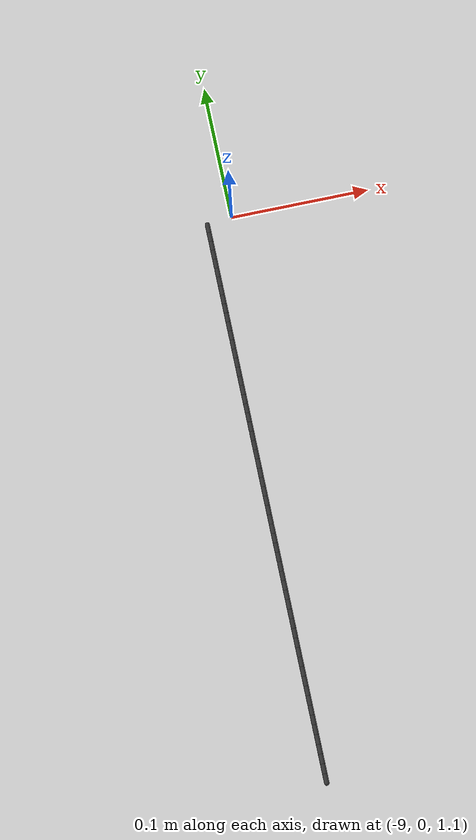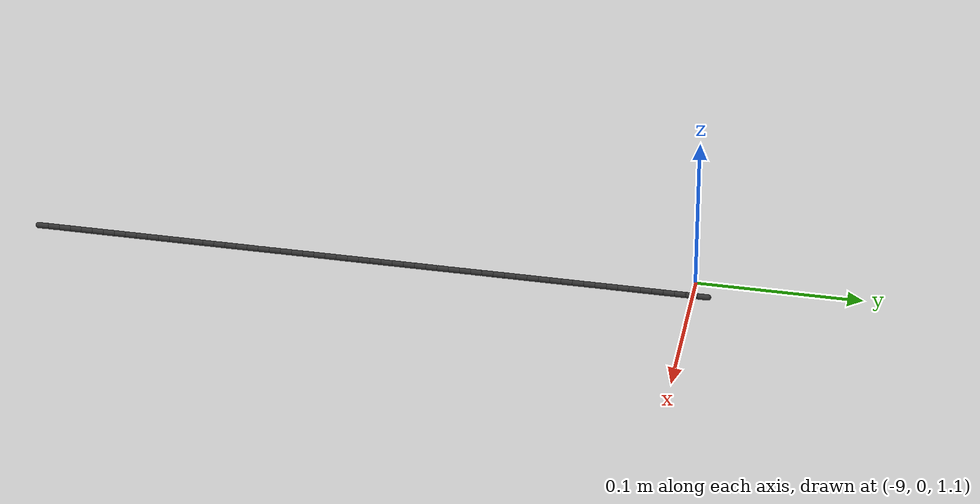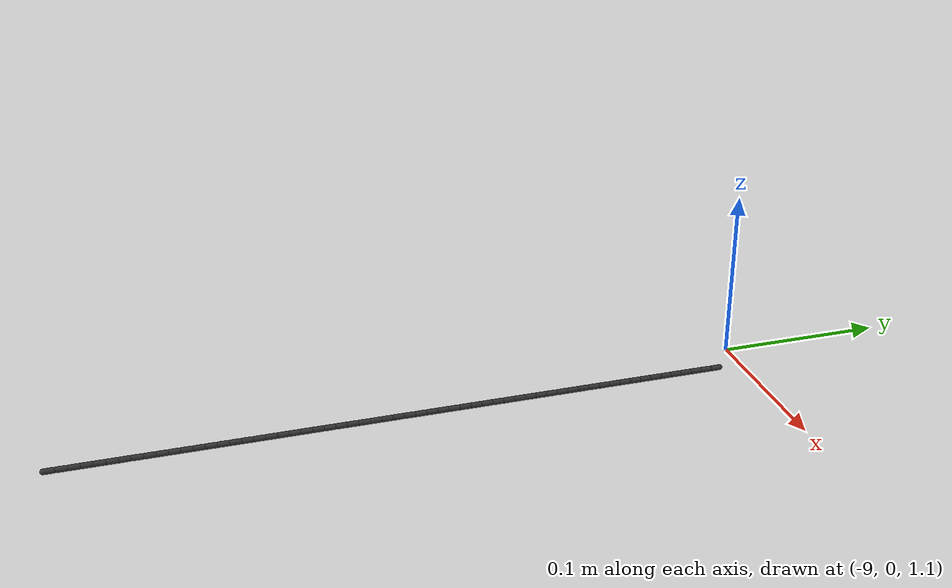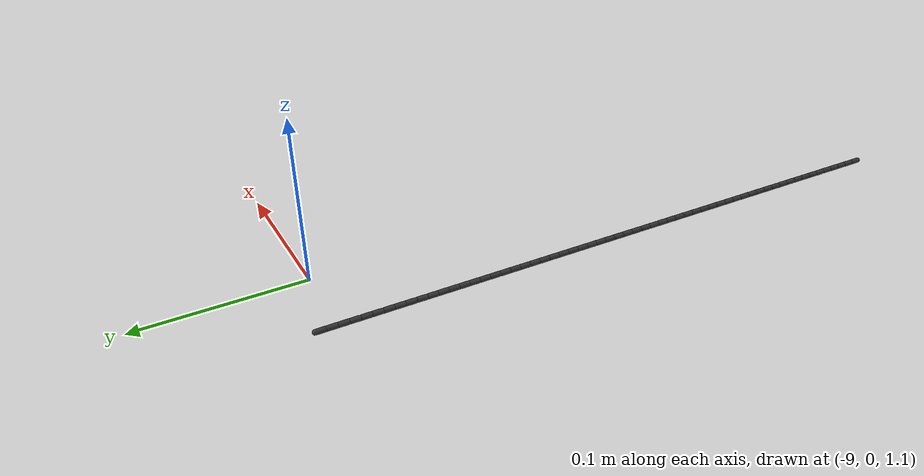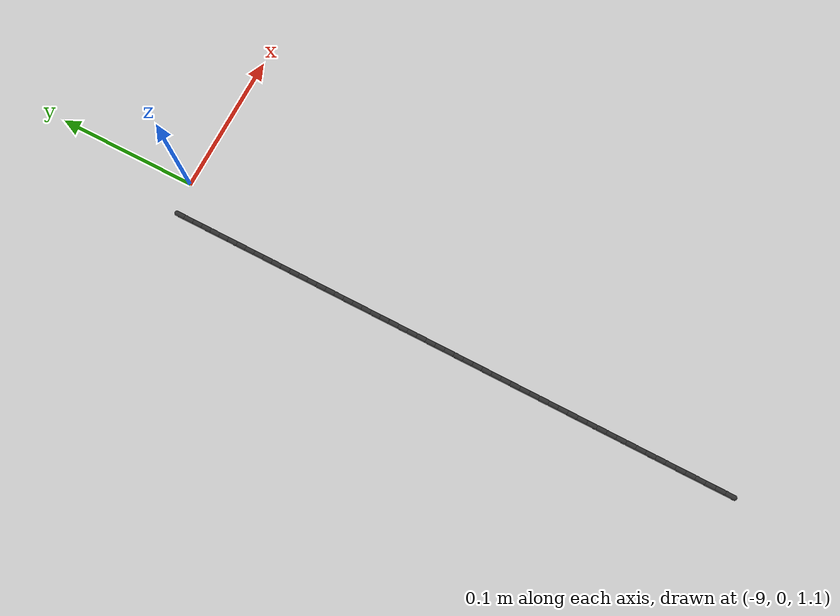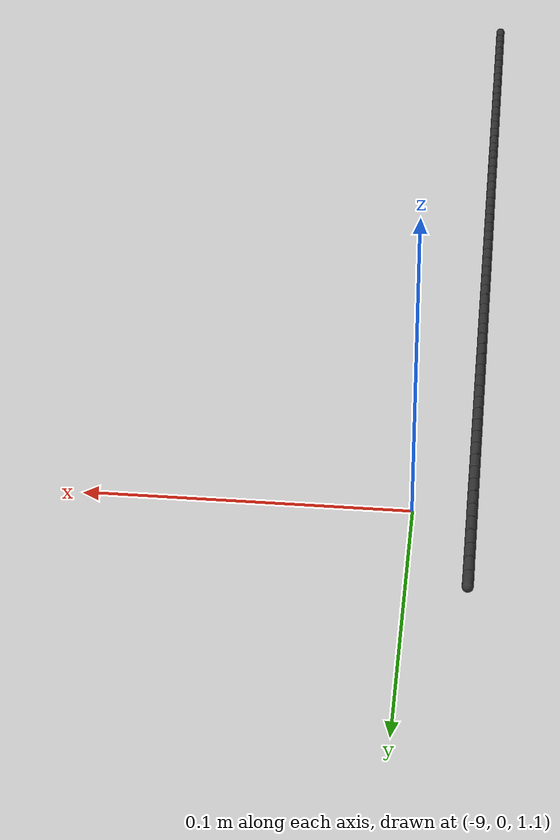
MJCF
<mujoco model="MuJoCo Model">
    <compiler angle="degree" />
	<option gravity="0 0 0"/>
    <size njmax="500" nconmax="100" />
    <default class="main">
        <default class="catheter">
            <motor ctrllimited="true"  forcelimited="true" ctrlrange="-1 1" forcerange="-0.005 0.005" />
			<joint pos="-0.00345 0 0" group="3" limited="true" stiffness="1e-05" range="-20 20" armature="0.1" damping="0.005" />
			<geom size="0.0018 0.003" quat="0.707107 0 0.707107 0" type="capsule" group="1" rgba="0.2 0.2 0.2 1" />
        </default>
        <default class="guidewire">
            <motor ctrllimited="true"  forcelimited="true" ctrlrange="-1 1" forcerange="-0.005 0.005" />
			<joint pos="-0.00345 0 0" group="3" limited="true" stiffness="1e-05" range="-15 15" armature="0.1" damping="0.005" />
			<geom size="0.0018 0.003" quat="0.707107 0 0.707107 0" type="capsule" group="1" rgba="0.2 0.2 0.2 1" />
        </default>
    </default>
    <worldbody>
        <body name="B0" pos="-9.0176103 -0.40447 1.07725" quat="0.707107 0 0 0.707107">
            <inertial pos="0 0 0" quat="0.707107 0 0.707107 0" mass="7.93943e-05" diaginertia="4.66839e-10 4.66839e-10 1.28619e-10" />
            <joint name="slider_joint" pos="0 0 0" axis="1 0 0" type="slide" limited="true" range="0 2" />
            <geom name="G0" class="catheter" />
            <body name="B1" pos="0.0069 0 0">
                <inertial pos="0 0 0" quat="0.707107 0 0.707107 0" mass="7.93943e-05" diaginertia="4.66839e-10 4.66839e-10 1.28619e-10" />
                <joint name="J0_1" axis="0 1 0" class="guidewire" />
                <joint name="J1_1" axis="0 0 1" class="guidewire" />
                <geom name="G1" class="catheter" />
                <body name="B2" pos="0.0069 0 0">
                    <inertial pos="0 0 0" quat="0.707107 0 0.707107 0" mass="7.93943e-05" diaginertia="4.66839e-10 4.66839e-10 1.28619e-10" />
                    <joint name="J0_2" axis="0 1 0" class="guidewire" />
                    <joint name="J1_2" axis="0 0 1" class="guidewire" />
                    <geom name="G2" class="catheter" />
                    <body name="B3" pos="0.0069 0 0">
                        <inertial pos="0 0 0" quat="0.707107 0 0.707107 0" mass="7.93943e-05" diaginertia="4.66839e-10 4.66839e-10 1.28619e-10" />
                        <joint name="J0_3" axis="0 1 0" class="guidewire" />
                        <joint name="J1_3" axis="0 0 1" class="guidewire" />
                        <geom name="G3" class="catheter" />
                        <body name="B4" pos="0.0069 0 0">
                            <inertial pos="0 0 0" quat="0.707107 0 0.707107 0" mass="7.93943e-05" diaginertia="4.66839e-10 4.66839e-10 1.28619e-10" />
                            <joint name="J0_4" axis="0 1 0" class="guidewire" />
                            <joint name="J1_4" axis="0 0 1" class="guidewire" />
                            <geom name="G4" class="catheter" />
                            <body name="B5" pos="0.0069 0 0">
                                <inertial pos="0 0 0" quat="0.707107 0 0.707107 0" mass="7.93943e-05" diaginertia="4.66839e-10 4.66839e-10 1.28619e-10" />
                                <joint name="J0_5" axis="0 1 0" class="guidewire" />
                                <joint name="J1_5" axis="0 0 1" class="guidewire" />
                                <geom name="G5" class="catheter" />
                                <body name="B6" pos="0.0069 0 0">
                                    <inertial pos="0 0 0" quat="0.707107 0 0.707107 0" mass="7.93943e-05" diaginertia="4.66839e-10 4.66839e-10 1.28619e-10" />
                                    <joint name="J0_6" axis="0 1 0" class="guidewire" />
                                    <joint name="J1_6" axis="0 0 1" class="guidewire" />
                                    <geom name="G6" class="catheter" />
                                    <body name="B7" pos="0.0069 0 0">
                                        <inertial pos="0 0 0" quat="0.707107 0 0.707107 0" mass="7.93943e-05" diaginertia="4.66839e-10 4.66839e-10 1.28619e-10" />
                                        <joint name="J0_7" axis="0 1 0" class="guidewire" />
                                        <joint name="J1_7" axis="0 0 1" class="guidewire" />
                                        <geom name="G7" class="catheter" />
                                        <body name="B8" pos="0.0069 0 0">
                                            <inertial pos="0 0 0" quat="0.707107 0 0.707107 0" mass="7.93943e-05" diaginertia="4.66839e-10 4.66839e-10 1.28619e-10" />
                                            <joint name="J0_8" axis="0 1 0" class="guidewire" />
                                            <joint name="J1_8" axis="0 0 1" class="guidewire" />
                                            <geom name="G8" class="catheter" />
                                            <body name="B9" pos="0.0069 0 0">
                                                <inertial pos="0 0 0" quat="0.707107 0 0.707107 0" mass="7.93943e-05" diaginertia="4.66839e-10 4.66839e-10 1.28619e-10" />
                                                <joint name="J0_9" axis="0 1 0" class="guidewire" />
                                                <joint name="J1_9" axis="0 0 1" class="guidewire" />
                                                <geom name="G9" class="catheter" />
                                                <body name="B10" pos="0.0069 0 0">
                                                    <inertial pos="0 0 0" quat="0.707107 0 0.707107 0" mass="7.93943e-05" diaginertia="4.66839e-10 4.66839e-10 1.28619e-10" />
                                                    <joint name="J0_10" axis="0 1 0" class="guidewire" />
                                                    <joint name="J1_10" axis="0 0 1" class="guidewire" />
                                                    <geom name="G10" class="catheter" />
                                                    <body name="B11" pos="0.0069 0 0">
                                                        <inertial pos="0 0 0" quat="0.707107 0 0.707107 0" mass="7.93943e-05" diaginertia="4.66839e-10 4.66839e-10 1.28619e-10" />
                                                        <joint name="J0_11" axis="0 1 0" class="guidewire" />
                                                        <joint name="J1_11" axis="0 0 1" class="guidewire" />
                                                        <geom name="G11" class="catheter" />
                                                        <body name="B12" pos="0.0069 0 0">
                                                            <inertial pos="0 0 0" quat="0.707107 0 0.707107 0" mass="7.93943e-05" diaginertia="4.66839e-10 4.66839e-10 1.28619e-10" />
                                                            <joint name="J0_12" axis="0 1 0" class="guidewire" />
                                                            <joint name="J1_12" axis="0 0 1" class="guidewire" />
                                                            <geom name="G12" class="catheter" />
                                                            <body name="B13" pos="0.0069 0 0">
                                                                <inertial pos="0 0 0" quat="0.707107 0 0.707107 0" mass="7.93943e-05" diaginertia="4.66839e-10 4.66839e-10 1.28619e-10" />
                                                                <joint name="J0_13" axis="0 1 0" class="guidewire" />
                                                                <joint name="J1_13" axis="0 0 1" class="guidewire" />
                                                                <geom name="G13" class="catheter" />
                                                                <body name="B14" pos="0.0069 0 0">
                                                                    <inertial pos="0 0 0" quat="0.707107 0 0.707107 0" mass="7.93943e-05" diaginertia="4.66839e-10 4.66839e-10 1.28619e-10" />
                                                                    <joint name="J0_14" axis="0 1 0" class="guidewire" />
                                                                    <joint name="J1_14" axis="0 0 1" class="guidewire" />
                                                                    <geom name="G14" class="catheter" />
                                                                    <body name="B15" pos="0.0069 0 0">
                                                                        <inertial pos="0 0 0" quat="0.707107 0 0.707107 0" mass="7.93943e-05" diaginertia="4.66839e-10 4.66839e-10 1.28619e-10" />
                                                                        <joint name="J0_15" axis="0 1 0" class="guidewire" />
                                                                        <joint name="J1_15" axis="0 0 1" class="guidewire" />
                                                                        <geom name="G15" class="catheter" />
                                                                        <body name="B16" pos="0.0069 0 0">
                                                                            <inertial pos="0 0 0" quat="0.707107 0 0.707107 0" mass="7.93943e-05" diaginertia="4.66839e-10 4.66839e-10 1.28619e-10" />
                                                                            <joint name="J0_16" axis="0 1 0" class="guidewire" />
                                                                            <joint name="J1_16" axis="0 0 1" class="guidewire" />
                                                                            <geom name="G16" class="catheter" />
                                                                            <body name="B17" pos="0.0069 0 0">
                                                                                <inertial pos="0 0 0" quat="0.707107 0 0.707107 0" mass="7.93943e-05" diaginertia="4.66839e-10 4.66839e-10 1.28619e-10" />
                                                                                <joint name="J0_17" axis="0 1 0" class="guidewire" />
                                                                                <joint name="J1_17" axis="0 0 1" class="guidewire" />
                                                                                <geom name="G17" class="catheter" />
                                                                                <body name="B18" pos="0.0069 0 0">
                                                                                    <inertial pos="0 0 0" quat="0.707107 0 0.707107 0" mass="7.93943e-05" diaginertia="4.66839e-10 4.66839e-10 1.28619e-10" />
                                                                                    <joint name="J0_18" axis="0 1 0" class="guidewire" />
                                                                                    <joint name="J1_18" axis="0 0 1" class="guidewire" />
                                                                                    <geom name="G18" class="catheter" />
                                                                                    <body name="B19" pos="0.0069 0 0">
                                                                                        <inertial pos="0 0 0" quat="0.707107 0 0.707107 0" mass="7.93943e-05" diaginertia="4.66839e-10 4.66839e-10 1.28619e-10" />
                                                                                        <joint name="J0_19" axis="0 1 0" class="guidewire" />
                                                                                        <joint name="J1_19" axis="0 0 1" class="guidewire" />
                                                                                        <geom name="G19" class="catheter" />
                                                                                        <body name="B20" pos="0.0069 0 0">
                                                                                            <inertial pos="0 0 0" quat="0.707107 0 0.707107 0" mass="7.93943e-05" diaginertia="4.66839e-10 4.66839e-10 1.28619e-10" />
                                                                                            <joint name="J0_20" axis="0 1 0" class="guidewire" />
                                                                                            <joint name="J1_20" axis="0 0 1" class="guidewire" />
                                                                                            <geom name="G20" class="catheter" />
                                                                                            <body name="B21" pos="0.0069 0 0">
                                                                                                <inertial pos="0 0 0" quat="0.707107 0 0.707107 0" mass="7.93943e-05" diaginertia="4.66839e-10 4.66839e-10 1.28619e-10" />
                                                                                                <joint name="J0_21" axis="0 1 0" class="guidewire" />
                                                                                                <joint name="J1_21" axis="0 0 1" class="guidewire" />
                                                                                                <geom name="G21" class="catheter" />
                                                                                                <body name="B22" pos="0.0069 0 0">
                                                                                                    <inertial pos="0 0 0" quat="0.707107 0 0.707107 0" mass="7.93943e-05" diaginertia="4.66839e-10 4.66839e-10 1.28619e-10" />
                                                                                                    <joint name="J0_22" axis="0 1 0" class="guidewire" />
                                                                                                    <joint name="J1_22" axis="0 0 1" class="guidewire" />
                                                                                                    <geom name="G22" class="catheter" />
                                                                                                    <body name="B23" pos="0.0069 0 0">
                                                                                                        <inertial pos="0 0 0" quat="0.707107 0 0.707107 0" mass="7.93943e-05" diaginertia="4.66839e-10 4.66839e-10 1.28619e-10" />
                                                                                                        <joint name="J0_23" axis="0 1 0" class="guidewire" />
                                                                                                        <joint name="J1_23" axis="0 0 1" class="guidewire" />
                                                                                                        <geom name="G23" class="catheter" />
                                                                                                        <body name="B24" pos="0.0069 0 0">
                                                                                                            <inertial pos="0 0 0" quat="0.707107 0 0.707107 0" mass="7.93943e-05" diaginertia="4.66839e-10 4.66839e-10 1.28619e-10" />
                                                                                                            <joint name="J0_24" axis="0 1 0" class="guidewire" />
                                                                                                            <joint name="J1_24" axis="0 0 1" class="guidewire" />
                                                                                                            <geom name="G24" class="catheter" />
                                                                                                            <body name="B25" pos="0.0069 0 0">
                                                                                                                <inertial pos="0 0 0" quat="0.707107 0 0.707107 0" mass="7.93943e-05" diaginertia="4.66839e-10 4.66839e-10 1.28619e-10" />
                                                                                                                <joint name="J0_25" axis="0 1 0" class="guidewire" />
                                                                                                                <joint name="J1_25" axis="0 0 1" class="guidewire" />
                                                                                                                <geom name="G25" class="catheter" />
                                                                                                                <body name="B26" pos="0.0069 0 0">
                                                                                                                    <inertial pos="0 0 0" quat="0.707107 0 0.707107 0" mass="7.93943e-05" diaginertia="4.66839e-10 4.66839e-10 1.28619e-10" />
                                                                                                                    <joint name="J0_26" axis="0 1 0" class="guidewire" />
                                                                                                                    <joint name="J1_26" axis="0 0 1" class="guidewire" />
                                                                                                                    <geom name="G26" class="catheter" />
                                                                                                                    <body name="B27" pos="0.0069 0 0">
                                                                                                                        <inertial pos="0 0 0" quat="0.707107 0 0.707107 0" mass="7.93943e-05" diaginertia="4.66839e-10 4.66839e-10 1.28619e-10" />
                                                                                                                        <joint name="J0_27" axis="0 1 0" class="guidewire" />
                                                                                                                        <joint name="J1_27" axis="0 0 1" class="guidewire" />
                                                                                                                        <geom name="G27" class="catheter" />
                                                                                                                        <body name="B28" pos="0.0069 0 0">
                                                                                                                            <inertial pos="0 0 0" quat="0.707107 0 0.707107 0" mass="7.93943e-05" diaginertia="4.66839e-10 4.66839e-10 1.28619e-10" />
                                                                                                                            <joint name="J0_28" axis="0 1 0" class="guidewire" />
                                                                                                                            <joint name="J1_28" axis="0 0 1" class="guidewire" />
                                                                                                                            <geom name="G28" class="catheter" />
                                                                                                                            <body name="B29" pos="0.0069 0 0">
                                                                                                                                <inertial pos="0 0 0" quat="0.707107 0 0.707107 0" mass="7.93943e-05" diaginertia="4.66839e-10 4.66839e-10 1.28619e-10" />
                                                                                                                                <joint name="J0_29" axis="0 1 0" class="guidewire" />
                                                                                                                                <joint name="J1_29" axis="0 0 1" class="guidewire" />
                                                                                                                                <geom name="G29" class="catheter" />
                                                                                                                                <body name="B30" pos="0.0069 0 0">
                                                                                                                                    <inertial pos="0 0 0" quat="0.707107 0 0.707107 0" mass="7.93943e-05" diaginertia="4.66839e-10 4.66839e-10 1.28619e-10" />
                                                                                                                                    <joint name="J0_30" axis="0 1 0" class="guidewire" />
                                                                                                                                    <joint name="J1_30" axis="0 0 1" class="guidewire" />
                                                                                                                                    <geom name="G30" class="catheter" />
                                                                                                                                    <body name="B31" pos="0.0069 0 0">
                                                                                                                                        <inertial pos="0 0 0" quat="0.707107 0 0.707107 0" mass="7.93943e-05" diaginertia="4.66839e-10 4.66839e-10 1.28619e-10" />
                                                                                                                                        <joint name="J0_31" axis="0 1 0" class="guidewire" />
                                                                                                                                        <joint name="J1_31" axis="0 0 1" class="guidewire" />
                                                                                                                                        <geom name="G31" class="catheter" />
                                                                                                                                        <body name="B32" pos="0.0069 0 0">
                                                                                                                                            <inertial pos="0 0 0" quat="0.707107 0 0.707107 0" mass="7.93943e-05" diaginertia="4.66839e-10 4.66839e-10 1.28619e-10" />
                                                                                                                                            <joint name="J0_32" axis="0 1 0" class="guidewire" />
                                                                                                                                            <joint name="J1_32" axis="0 0 1" class="guidewire" />
                                                                                                                                            <geom name="G32" class="catheter" />
                                                                                                                                            <body name="B33" pos="0.0069 0 0">
                                                                                                                                                <inertial pos="0 0 0" quat="0.707107 0 0.707107 0" mass="7.93943e-05" diaginertia="4.66839e-10 4.66839e-10 1.28619e-10" />
                                                                                                                                                <joint name="J0_33" axis="0 1 0" class="guidewire" />
                                                                                                                                                <joint name="J1_33" axis="0 0 1" class="guidewire" />
                                                                                                                                                <geom name="G33" class="catheter" />
                                                                                                                                                <body name="B34" pos="0.0069 0 0">
                                                                                                                                                    <inertial pos="0 0 0" quat="0.707107 0 0.707107 0" mass="7.93943e-05" diaginertia="4.66839e-10 4.66839e-10 1.28619e-10" />
                                                                                                                                                    <joint name="J0_34" axis="0 1 0" class="guidewire" />
                                                                                                                                                    <joint name="J1_34" axis="0 0 1" class="guidewire" />
                                                                                                                                                    <geom name="G34" class="catheter" />
                                                                                                                                                    <body name="B35" pos="0.0069 0 0">
                                                                                                                                                        <inertial pos="0 0 0" quat="0.707107 0 0.707107 0" mass="7.93943e-05" diaginertia="4.66839e-10 4.66839e-10 1.28619e-10" />
                                                                                                                                                        <joint name="J0_35" axis="0 1 0" class="guidewire" />
                                                                                                                                                        <joint name="J1_35" axis="0 0 1" class="guidewire" />
                                                                                                                                                        <geom name="G35" class="catheter" />
                                                                                                                                                        <body name="B36" pos="0.0069 0 0">
                                                                                                                                                            <inertial pos="0 0 0" quat="0.707107 0 0.707107 0" mass="7.93943e-05" diaginertia="4.66839e-10 4.66839e-10 1.28619e-10" />
                                                                                                                                                            <joint name="J0_36" axis="0 1 0" class="guidewire" />
                                                                                                                                                            <joint name="J1_36" axis="0 0 1" class="guidewire" />
                                                                                                                                                            <geom name="G36" class="catheter" />
                                                                                                                                                            <body name="B37" pos="0.0069 0 0">
                                                                                                                                                                <inertial pos="0 0 0" quat="0.707107 0 0.707107 0" mass="7.93943e-05" diaginertia="4.66839e-10 4.66839e-10 1.28619e-10" />
                                                                                                                                                                <joint name="J0_37" axis="0 1 0" class="guidewire" />
                                                                                                                                                                <joint name="J1_37" axis="0 0 1" class="guidewire" />
                                                                                                                                                                <geom name="G37" class="catheter" />
                                                                                                                                                                <body name="B38" pos="0.0069 0 0">
                                                                                                                                                                    <inertial pos="0 0 0" quat="0.707107 0 0.707107 0" mass="7.93943e-05" diaginertia="4.66839e-10 4.66839e-10 1.28619e-10" />
                                                                                                                                                                    <joint name="J0_38" axis="0 1 0" class="guidewire" />
                                                                                                                                                                    <joint name="J1_38" axis="0 0 1" class="guidewire" />
                                                                                                                                                                    <geom name="G38" class="catheter" />
                                                                                                                                                                    <body name="B39" pos="0.0069 0 0">
                                                                                                                                                                        <inertial pos="0 0 0" quat="0.707107 0 0.707107 0" mass="7.93943e-05" diaginertia="4.66839e-10 4.66839e-10 1.28619e-10" />
                                                                                                                                                                        <joint name="J0_39" axis="0 1 0" class="guidewire" />
                                                                                                                                                                        <joint name="J1_39" axis="0 0 1" class="guidewire" />
                                                                                                                                                                        <geom name="G39" class="catheter" />
                                                                                                                                                                        <body name="B40" pos="0.0069 0 0">
                                                                                                                                                                            <inertial pos="0 0 0" quat="0.707107 0 0.707107 0" mass="7.93943e-05" diaginertia="4.66839e-10 4.66839e-10 1.28619e-10" />
                                                                                                                                                                            <joint name="J0_40" axis="0 1 0" class="guidewire" />
                                                                                                                                                                            <joint name="J1_40" axis="0 0 1" class="guidewire" />
                                                                                                                                                                            <geom name="G40" class="catheter" />
                                                                                                                                                                            <body name="B41" pos="0.0069 0 0">
                                                                                                                                                                                <inertial pos="0 0 0" quat="0.707107 0 0.707107 0" mass="7.93943e-05" diaginertia="4.66839e-10 4.66839e-10 1.28619e-10" />
                                                                                                                                                                                <joint name="J0_41" axis="0 1 0" class="guidewire" />
                                                                                                                                                                                <joint name="J1_41" axis="0 0 1" class="guidewire" />
                                                                                                                                                                                <geom name="G41" class="catheter" />
                                                                                                                                                                                <body name="B42" pos="0.0069 0 0">
                                                                                                                                                                                    <inertial pos="0 0 0" quat="0.707107 0 0.707107 0" mass="7.93943e-05" diaginertia="4.66839e-10 4.66839e-10 1.28619e-10" />
                                                                                                                                                                                    <joint name="J0_42" axis="0 1 0" class="guidewire" />
                                                                                                                                                                                    <joint name="J1_42" axis="0 0 1" class="guidewire" />
                                                                                                                                                                                    <geom name="G42" class="catheter" />
                                                                                                                                                                                    <body name="B43" pos="0.0069 0 0">
                                                                                                                                                                                        <inertial pos="0 0 0" quat="0.707107 0 0.707107 0" mass="7.93943e-05" diaginertia="4.66839e-10 4.66839e-10 1.28619e-10" />
                                                                                                                                                                                        <joint name="J0_43" axis="0 1 0" class="guidewire" />
                                                                                                                                                                                        <joint name="J1_43" axis="0 0 1" class="guidewire" />
                                                                                                                                                                                        <geom name="G43" class="catheter" />
                                                                                                                                                                                        <body name="B44" pos="0.0069 0 0">
                                                                                                                                                                                            <inertial pos="0 0 0" quat="0.707107 0 0.707107 0" mass="7.93943e-05" diaginertia="4.66839e-10 4.66839e-10 1.28619e-10" />
                                                                                                                                                                                            <joint name="J0_44" axis="0 1 0" class="guidewire" />
                                                                                                                                                                                            <joint name="J1_44" axis="0 0 1" class="guidewire" />
                                                                                                                                                                                            <geom name="G44" class="catheter" />
                                                                                                                                                                                            <body name="B45" pos="0.0069 0 0">
                                                                                                                                                                                                <inertial pos="0 0 0" quat="0.707107 0 0.707107 0" mass="7.93943e-05" diaginertia="4.66839e-10 4.66839e-10 1.28619e-10" />
                                                                                                                                                                                                <joint name="J0_45" axis="0 1 0" class="guidewire" />
                                                                                                                                                                                                <joint name="J1_45" axis="0 0 1" class="guidewire" />
                                                                                                                                                                                                <geom name="G45" class="catheter" />
                                                                                                                                                                                                <body name="B46" pos="0.0069 0 0">
                                                                                                                                                                                                    <inertial pos="0 0 0" quat="0.707107 0 0.707107 0" mass="7.93943e-05" diaginertia="4.66839e-10 4.66839e-10 1.28619e-10" />
                                                                                                                                                                                                    <joint name="J0_46" axis="0 1 0" class="guidewire" />
                                                                                                                                                                                                    <joint name="J1_46" axis="0 0 1" class="guidewire" />
                                                                                                                                                                                                    <geom name="G46" class="catheter" />
                                                                                                                                                                                                    <body name="B47" pos="0.0069 0 0">
                                                                                                                                                                                                        <inertial pos="0 0 0" quat="0.707107 0 0.707107 0" mass="7.93943e-05" diaginertia="4.66839e-10 4.66839e-10 1.28619e-10" />
                                                                                                                                                                                                        <joint name="J0_47" axis="0 1 0" class="guidewire" />
                                                                                                                                                                                                        <joint name="J1_47" axis="0 0 1" class="guidewire" />
                                                                                                                                                                                                        <geom name="G47" class="catheter" />
                                                                                                                                                                                                        <body name="B48" pos="0.0069 0 0">
                                                                                                                                                                                                            <inertial pos="0 0 0" quat="0.707107 0 0.707107 0" mass="7.93943e-05" diaginertia="4.66839e-10 4.66839e-10 1.28619e-10" />
                                                                                                                                                                                                            <joint name="J0_48" axis="0 1 0" class="guidewire" />
                                                                                                                                                                                                            <joint name="J1_48" axis="0 0 1" class="guidewire" />
                                                                                                                                                                                                            <geom name="G48" class="catheter" />
                                                                                                                                                                                                            <body name="B49" pos="0.0069 0 0">
                                                                                                                                                                                                                <inertial pos="0 0 0" quat="0.707107 0 0.707107 0" mass="7.93943e-05" diaginertia="4.66839e-10 4.66839e-10 1.28619e-10" />
                                                                                                                                                                                                                <joint name="J0_49" axis="0 1 0" class="guidewire" />
                                                                                                                                                                                                                <joint name="J1_49" axis="0 0 1" class="guidewire" />
                                                                                                                                                                                                                <geom name="G49" class="catheter" />
                                                                                                                                                                                                                <body name="B50" pos="0.0069 0 0">
                                                                                                                                                                                                                    <inertial pos="0 0 0" quat="0.707107 0 0.707107 0" mass="7.93943e-05" diaginertia="4.66839e-10 4.66839e-10 1.28619e-10" />
                                                                                                                                                                                                                    <joint name="J0_50" axis="0 1 0" class="catheter" />
                                                                                                                                                                                                                    <joint name="J1_50" axis="0 0 1" class="catheter" />
                                                                                                                                                                                                                    <geom name="G50" class="catheter" />
                                                                                                                                                                                                                    <body name="B51" pos="0.0069 0 0">
                                                                                                                                                                                                                        <inertial pos="0 0 0" quat="0.707107 0 0.707107 0" mass="7.93943e-05" diaginertia="4.66839e-10 4.66839e-10 1.28619e-10" />
                                                                                                                                                                                                                        <joint name="J0_51" axis="0 1 0" class="catheter" />
                                                                                                                                                                                                                        <joint name="J1_51" axis="0 0 1" class="catheter" />
                                                                                                                                                                                                                        <geom name="G51" class="catheter" />
                                                                                                                                                                                                                        <body name="B52" pos="0.0069 0 0">
                                                                                                                                                                                                                            <inertial pos="0 0 0" quat="0.707107 0 0.707107 0" mass="7.93943e-05" diaginertia="4.66839e-10 4.66839e-10 1.28619e-10" />
                                                                                                                                                                                                                            <joint name="J0_52" axis="0 1 0" class="catheter" />
                                                                                                                                                                                                                            <joint name="J1_52" axis="0 0 1" class="catheter" />
                                                                                                                                                                                                                            <geom name="G52" class="catheter" />
                                                                                                                                                                                                                            <body name="B53" pos="0.0069 0 0">
                                                                                                                                                                                                                                <inertial pos="0 0 0" quat="0.707107 0 0.707107 0" mass="7.93943e-05" diaginertia="4.66839e-10 4.66839e-10 1.28619e-10" />
                                                                                                                                                                                                                                <joint name="J0_53" axis="0 1 0" class="catheter" />
                                                                                                                                                                                                                                <joint name="J1_53" axis="0 0 1" class="catheter" />
                                                                                                                                                                                                                                <geom name="G53" class="catheter" />
                                                                                                                                                                                                                                <body name="B54" pos="0.0069 0 0">
                                                                                                                                                                                                                                    <inertial pos="0 0 0" quat="0.707107 0 0.707107 0" mass="7.93943e-05" diaginertia="4.66839e-10 4.66839e-10 1.28619e-10" />
                                                                                                                                                                                                                                    <joint name="J0_54" axis="0 1 0" class="catheter" />
                                                                                                                                                                                                                                    <joint name="J1_54" axis="0 0 1" class="catheter" />
                                                                                                                                                                                                                                    <geom name="G54" class="catheter" />
                                                                                                                                                                                                                                    <body name="B55" pos="0.0069 0 0">
                                                                                                                                                                                                                                        <inertial pos="0 0 0" quat="0.707107 0 0.707107 0" mass="7.93943e-05" diaginertia="4.66839e-10 4.66839e-10 1.28619e-10" />
                                                                                                                                                                                                                                        <joint name="J0_55" axis="0 1 0" class="catheter" />
                                                                                                                                                                                                                                        <joint name="J1_55" axis="0 0 1" class="catheter" />
                                                                                                                                                                                                                                        <geom name="G55" class="catheter" />
                                                                                                                                                                                                                                        <body name="B56" pos="0.0069 0 0">
                                                                                                                                                                                                                                            <inertial pos="0 0 0" quat="0.707107 0 0.707107 0" mass="7.93943e-05" diaginertia="4.66839e-10 4.66839e-10 1.28619e-10" />
                                                                                                                                                                                                                                            <joint name="J0_56" axis="0 1 0" class="catheter" />
                                                                                                                                                                                                                                            <joint name="J1_56" axis="0 0 1" class="catheter" />
                                                                                                                                                                                                                                            <geom name="G56" class="catheter" />
                                                                                                                                                                                                                                            <body name="B57" pos="0.0069 0 0">
                                                                                                                                                                                                                                                <inertial pos="0 0 0" quat="0.707107 0 0.707107 0" mass="7.93943e-05" diaginertia="4.66839e-10 4.66839e-10 1.28619e-10" />
                                                                                                                                                                                                                                                <joint name="J0_57" axis="0 1 0" class="catheter" />
                                                                                                                                                                                                                                                <joint name="J1_57" axis="0 0 1" class="catheter" />
                                                                                                                                                                                                                                                <geom name="G57" class="catheter" />
                                                                                                                                                                                                                                                <body name="B58" pos="0.0069 0 0">
                                                                                                                                                                                                                                                    <inertial pos="0 0 0" quat="0.707107 0 0.707107 0" mass="7.93943e-05" diaginertia="4.66839e-10 4.66839e-10 1.28619e-10" />
                                                                                                                                                                                                                                                    <joint name="J0_58" axis="0 1 0" class="catheter" />
                                                                                                                                                                                                                                                    <joint name="J1_58" axis="0 0 1" class="catheter" />
                                                                                                                                                                                                                                                    <geom name="G58" class="catheter" />
                                                                                                                                                                                                                                                    <body name="B59" pos="0.0069 0 0">
                                                                                                                                                                                                                                                        <inertial pos="0 0 0" quat="0.707107 0 0.707107 0" mass="7.93943e-05" diaginertia="4.66839e-10 4.66839e-10 1.28619e-10" />
                                                                                                                                                                                                                                                        <joint name="J0_59" axis="0 1 0" class="catheter" />
                                                                                                                                                                                                                                                        <joint name="J1_59" axis="0 0 1" class="catheter" />
                                                                                                                                                                                                                                                        <geom name="G59" class="catheter" />
                                                                                                                                                                                                                                                    </body>
                                                                                                                                                                                                                                                </body>
                                                                                                                                                                                                                                            </body>
                                                                                                                                                                                                                                        </body>
                                                                                                                                                                                                                                    </body>
                                                                                                                                                                                                                                </body>
                                                                                                                                                                                                                            </body>
                                                                                                                                                                                                                        </body>
                                                                                                                                                                                                                    </body>
                                                                                                                                                                                                                </body>
                                                                                                                                                                                                            </body>
                                                                                                                                                                                                        </body>
                                                                                                                                                                                                    </body>
                                                                                                                                                                                                </body>
                                                                                                                                                                                            </body>
                                                                                                                                                                                        </body>
                                                                                                                                                                                    </body>
                                                                                                                                                                                </body>
                                                                                                                                                                            </body>
                                                                                                                                                                        </body>
                                                                                                                                                                    </body>
                                                                                                                                                                </body>
                                                                                                                                                            </body>
                                                                                                                                                        </body>
                                                                                                                                                    </body>
                                                                                                                                                </body>
                                                                                                                                            </body>
                                                                                                                                        </body>
                                                                                                                                    </body>
                                                                                                                                </body>
                                                                                                                            </body>
                                                                                                                        </body>
                                                                                                                    </body>
                                                                                                                </body>
                                                                                                            </body>
                                                                                                        </body>
                                                                                                    </body>
                                                                                                </body>
                                                                                            </body>
                                                                                        </body>
                                                                                    </body>
                                                                                </body>
                                                                            </body>
                                                                        </body>
                                                                    </body>
                                                                </body>
                                                            </body>
                                                        </body>
                                                    </body>
                                                </body>
                                            </body>
                                        </body>
                                    </body>
                                </body>
                            </body>
                        </body>
                    </body>
                </body>
            </body>
        </body>
    </worldbody>
    <actuator>
        <general name="slider_motor" joint="slider_joint" ctrllimited="true" forcelimited="true" ctrlrange="-1 1" forcerange="-0.005 0.005" />
		<motor name="J0_50_motor" joint="J0_50" class="catheter"/>
		<motor name="J1_50_motor" joint="J1_50" class="catheter"/>
		<motor name="J0_51_motor" joint="J0_51" class="catheter"/>
		<motor name="J1_51_motor" joint="J1_51" class="catheter"/>
		<motor name="J0_52_motor" joint="J0_52" class="catheter"/>
		<motor name="J1_52_motor" joint="J1_52" class="catheter"/>
		<motor name="J0_53_motor" joint="J0_53" class="catheter"/>
		<motor name="J1_53_motor" joint="J1_53" class="catheter"/>
		<motor name="J0_54_motor" joint="J0_54" class="catheter"/>
		<motor name="J1_54_motor" joint="J1_54" class="catheter"/>
		<motor name="J0_55_motor" joint="J0_55" class="catheter"/>
		<motor name="J1_55_motor" joint="J1_55" class="catheter"/>
		<motor name="J0_56_motor" joint="J0_56" class="catheter"/>
		<motor name="J1_56_motor" joint="J1_56" class="catheter"/>
		<motor name="J0_57_motor" joint="J0_57" class="catheter"/>
		<motor name="J1_57_motor" joint="J1_57" class="catheter"/>
		<motor name="J0_58_motor" joint="J0_58" class="catheter"/>
		<motor name="J1_58_motor" joint="J1_58" class="catheter"/>
		<motor name="J0_59_motor" joint="J0_59" class="catheter"/>
		<motor name="J1_59_motor" joint="J1_59" class="catheter"/>
    </actuator>
</mujoco>
